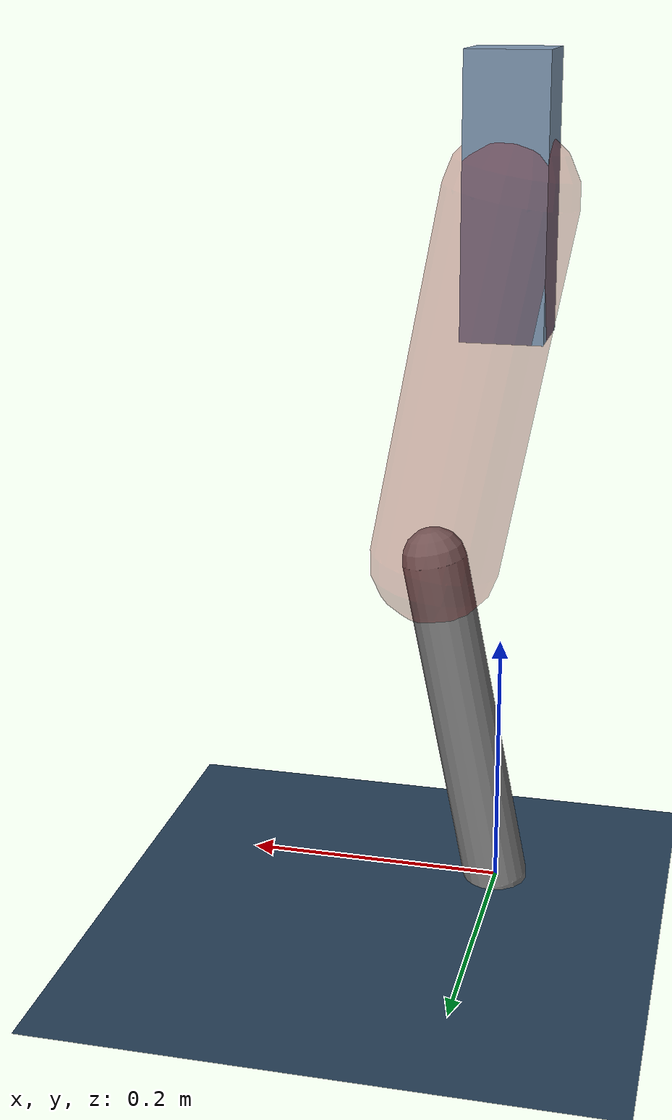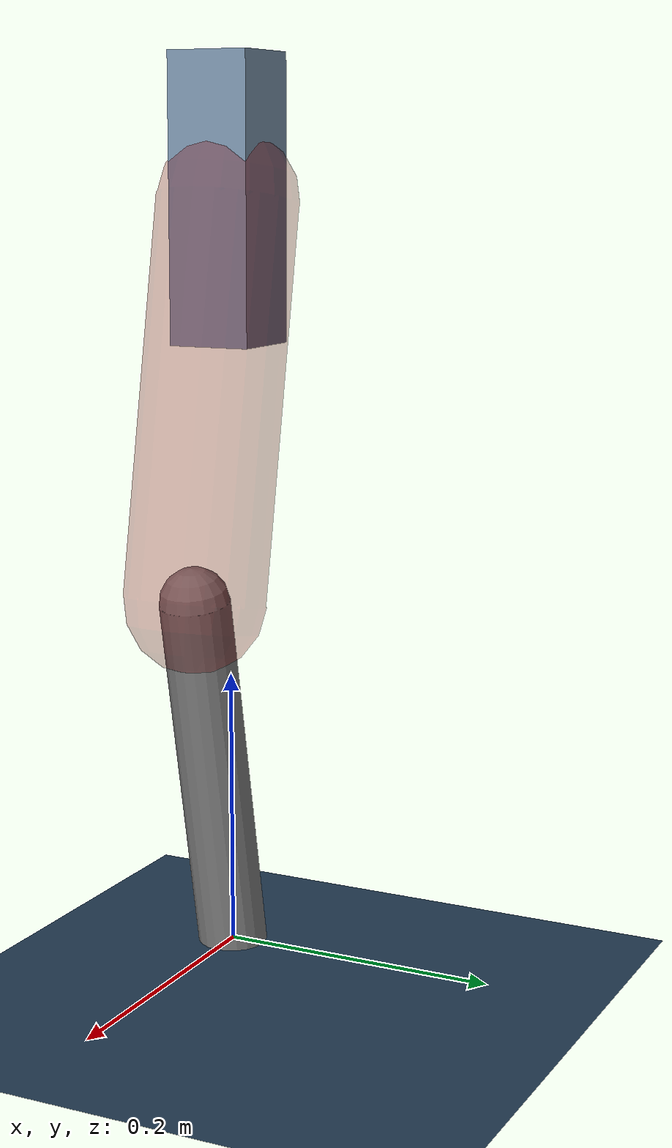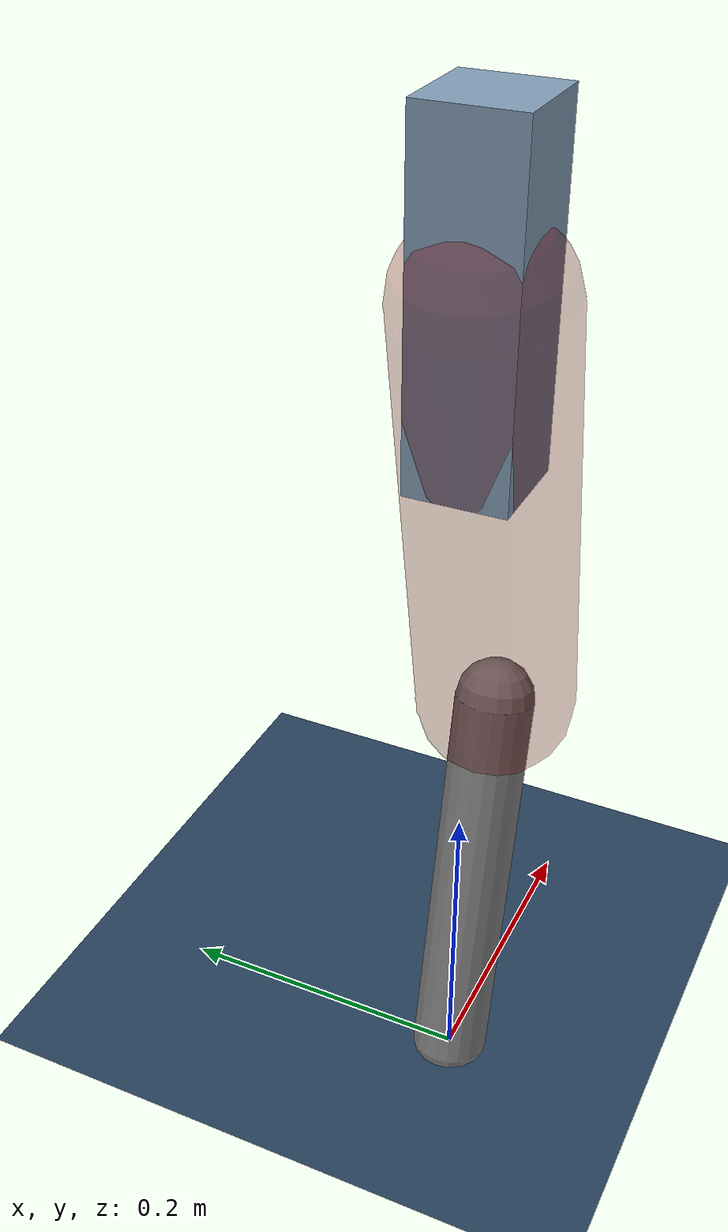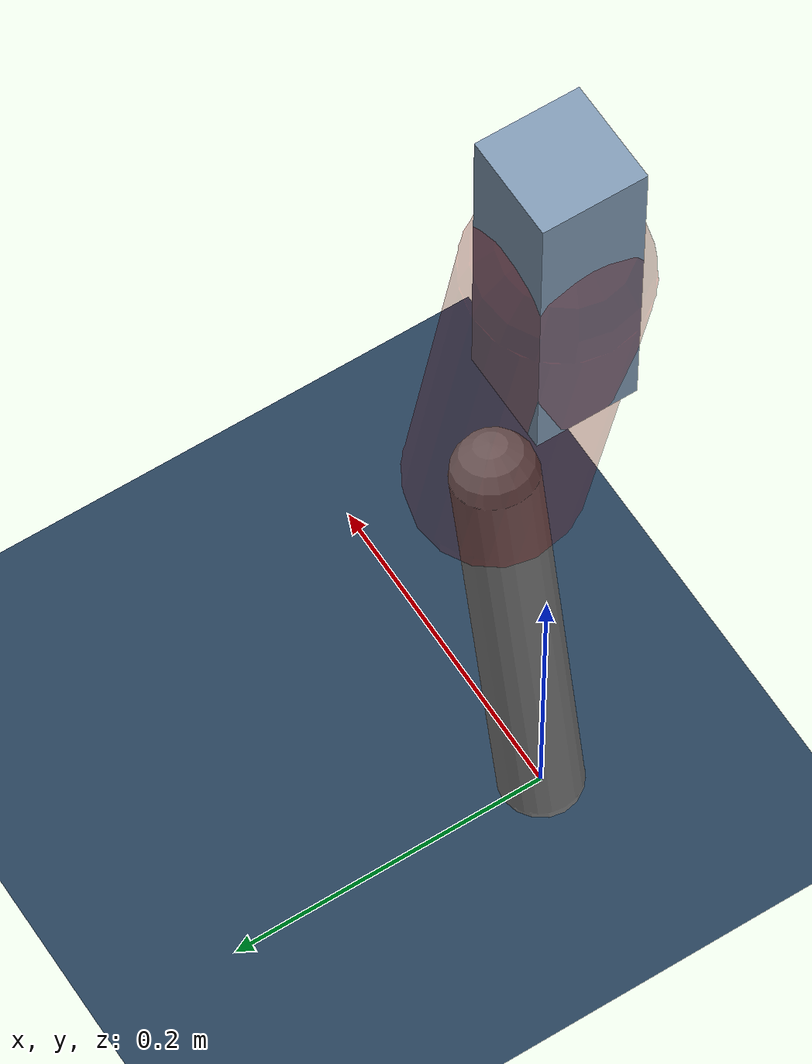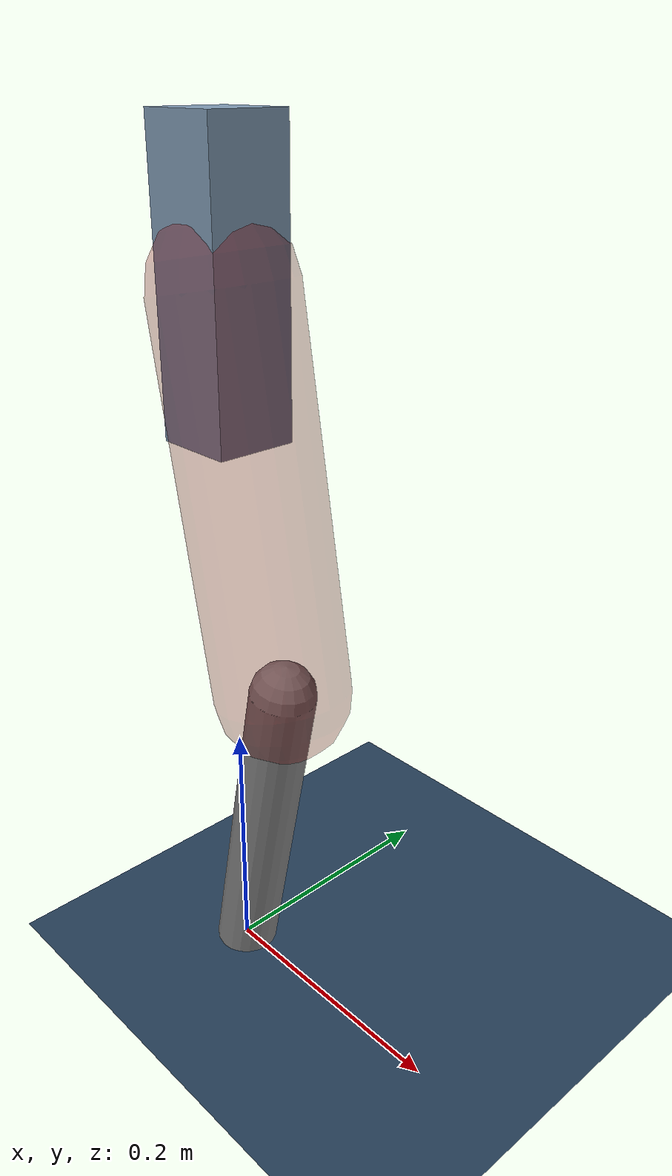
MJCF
<mujoco model="Hopper2D">
	<compiler inertiafromgeom="true" angle="radian" />
	<option timestep="0.001" integrator="implicit" cone="elliptic" solver="Newton" tolerance="1e-10" />

	<default>
		<geom contype="1" conaffinity="1" condim="3" friction="2 0.005 0.0001" solref="0.005 1" />
		<joint limited="true" damping="0.1" />
	</default>

	<asset>
		<texture name="skybox" type="skybox" builtin="gradient" rgb1=".4 .6 .8" rgb2="0 0 0" width="800" height="800" />
		<texture name="grid" type="2d" builtin="checker" rgb1=".1 .2 .3" rgb2=".2 .3 .4" width="300" height="300" mark="edge" markrgb=".2 .3 .4" />
		<material name="ground" texture="grid" texrepeat="1 1" texuniform="true" reflectance="0.1" />
		<material name="leg" rgba="0.5 0.6 0.7 1" />
	</asset>

	<worldbody>

		<geom name="floor" type="plane" size="5 5 0.25" material="ground" />

		<light directional="false" diffuse="0.8 0.8 0.8" specular="0.3 0.3 0.3" pos="0 0 2" dir="0 0 -1" />
		<light mode="targetbodycom" target="base" directional="false" diffuse="0.8 0.8 0.8" specular="0.3 0.3 0.3" pos="0 0 2" dir="0 0 -1" />

		<camera name="fixed" pos="0 -2 1" xyaxes="1 0 0 0 0 1" />
		<camera name="tracking" mode="trackcom" pos="0 -3 1" />

		<body name="root" pos="0 0 0.5380892439266776">
			<joint name="slide_x" type="slide" axis="1 0 0" range="-100 100" />
			<joint name="slide_z" type="slide" axis="0 0 1" range="0 10" />

			<body name="base" pos="0 0 0">
				<geom name="torso" type="box" size="0.03 0.03 0.1" mass="2.001" material="leg" />

				<body name="link1" pos="0 0 0" euler="0 1.3834616533309712 0">
					<joint type="hinge" axis="0 -1 0" pos="0 0 0" name="hinge1" limited="true" range="-3.14 3.14" stiffness="0" damping="0.1" />
					<geom name="thigh" type="capsule" fromto="0 0 0 0.27973604286152 0 0" size="0.05" rgba="0.5 0 0 0.3" mass="0.9344137114399519" />

					<body name="link2" pos="0.27973604286152 0 0" euler="0 0.3827160977990126 0">
						<joint type="hinge" axis="0 -1 0" pos="0 0 0" name="hinge2" limited="true" range="-3.14 3.14" stiffness="0" damping="0.1" />
						<geom name="shank" type="capsule" fromto="0 0 0 0.2683532010651576 0 0" size="0.025" mass="0.45758256085212606" />

					</body>
				</body>
			</body>
		</body>
	</worldbody>

	<actuator>
		<motor name="torque1" joint="hinge1" ctrlrange="-64.99371251408105 64.99371251408105" ctrllimited="true" gear="1" />
		<motor name="torque2" joint="hinge2" ctrlrange="-96.89245013798704 96.89245013798704" ctrllimited="true" gear="1" />
	</actuator>
</mujoco>
